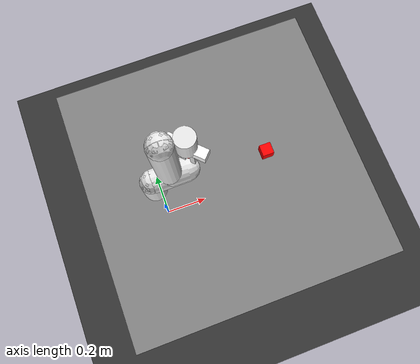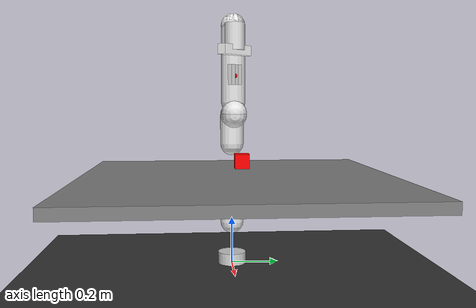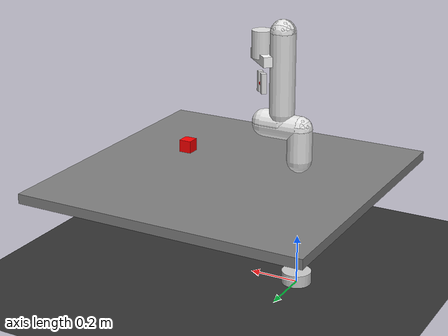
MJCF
<mujoco model="grasp_scene">
  <include file="franka/panda.xml"/>

  <statistic center="0 0 0.5" extent="1.5"/>

  <visual>
    <headlight diffuse="0.6 0.6 0.6" ambient="0.1 0.1 0.1" specular="0 0 0"/>
    <global azimuth="120" elevation="-20"/>
  </visual>

  <worldbody>
    <!-- Light -->
    <light pos="0 0 1.5" dir="0 0 -1" directional="true"/>

    <!-- Floor -->
    <geom name="floor" type="plane" size="2 2 0.1" rgba="0.2 0.2 0.2 1"/>

    <!-- Table -->
    <body name="table" pos="0.3 0 0.4">
      <geom type="box" size="0.6 0.6 0.02" rgba="0.5 0.5 0.5 1" friction="1 0.005 0.0001" solimp="0.99 0.99 0.001" solref="0.002 1"/>
    </body>

    <!-- Object -->
    <body name="box" pos="0.5 0 0.5">
      <freejoint/>
      <geom type="box" size="0.025 0.025 0.025" rgba="1 0 0 1" mass="0.1" friction="2 1 0.005" solimp="0.99 0.99 0.001" solref="0.002 1"/>
    </body>
  </worldbody>
</mujoco>

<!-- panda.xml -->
<mujoco model="franka_panda">
  <compiler angle="radian" meshdir="."/>

  <default>
    <joint damping="1" armature="0.1"/>
    <!-- Visual settings for the robot links -->
    <geom type="capsule" rgba="0.9 0.9 0.9 1" size="0.05"/>
    <site rgba="1 0 0 1" size="0.01"/>
  </default>

  <asset>
    <!-- We use procedural textures or colors instead of meshes for simplicity -->
  </asset>

  <worldbody>
    <!-- Robot Base -->
    <body name="link0" pos="0 0 0">
      <geom type="cylinder" fromto="0 0 0 0 0 0.05" size="0.06" rgba="0.8 0.8 0.8 1"/>

      <!-- Joint 1 -->
      <body name="link1" pos="0 0 0.333">
        <joint name="joint1" axis="0 0 1" range="-2.8973 2.8973"/>
        <geom fromto="0 0 0 0 0 -0.15"/>
        <geom fromto="0 0 0 0 0.1 0" size="0.05"/>

        <!-- Joint 2 -->
        <body name="link2" pos="0 0 0" quat="0.707107 -0.707107 0 0">
          <joint name="joint2" axis="0 0 1" range="-1.7628 1.7628"/>
          <geom fromto="0 0 0 0 0 0.15"/>

          <!-- Joint 3 -->
          <body name="link3" pos="0 -0.316 0" quat="0.707107 0.707107 0 0">
            <joint name="joint3" axis="0 0 1" range="-2.8973 2.8973"/>
            <geom fromto="0 0 0 0 0 -0.125"/>
            <geom fromto="0 0 0 0.15 0 0" size="0.05"/>

            <!-- Joint 4 -->
            <body name="link4" pos="0.15 0 0.01" quat="0.707107 0.707107 0 0">
              <joint name="joint4" axis="0 0 1" range="-3.0718 -0.0698"/>
              <geom fromto="0 0 0 -0.075 0 0"/>

              <!-- Joint 5 -->
              <body name="link5" pos="-0.0725 0.36 0" quat="0.707107 -0.707107 0 0">
                <joint name="joint5" axis="0 0 1" range="-2.8973 2.8973"/>
                <geom fromto="0 0 0 0 0 -0.3175"/>

                <!-- Joint 6 -->
                <body name="link6" pos="0 0 0" quat="0.707107 0.707107 0 0">
                  <joint name="joint6" axis="0 0 1" range="-0.0175 3.7525"/>
                  <geom fromto="0 0 0 0 0 0.001"/>

                  <!-- Joint 7 -->
                  <body name="link7" pos="0.088 0 0" quat="0.707107 0.707107 0 0">
                    <joint name="joint7" axis="0 0 1" range="-2.8973 2.8973"/>
                    <geom type="cylinder" fromto="0 0 0 0 0 0.107" size="0.04"/>

                    <!-- Hand -->
                    <body name="hand" pos="0 0 0.107" quat="0.92388 0 0 -0.382683">
                      <geom type="box" size="0.02 0.08 0.02" rgba="1 1 1 1"/>

                      <!-- Attachment Site for IK -->
                      <site name="attachment_site" pos="0 0 0.1034" />

                      <!-- Fingers -->
                      <body name="left_finger" pos="0 0 0.0584">
                          <joint name="finger_joint1" type="slide" axis="0 1 0" range="0 0.04"/>
                          <geom type="box" size="0.01 0.01 0.04" pos="0 0.02 0.04" friction="5 5 0.1" solimp="0.99 0.99 0.001" solref="0.002 1"/>
                        </body>
                        <body name="right_finger" pos="0 0 0.0584">
                          <joint name="finger_joint2" type="slide" axis="0 -1 0" range="0 0.04"/>
                          <geom type="box" size="0.01 0.01 0.04" pos="0 -0.02 0.04" friction="5 5 0.1" solimp="0.99 0.99 0.001" solref="0.002 1"/>
                        </body>
                    </body>
                  </body>
                </body>
              </body>
            </body>
          </body>
        </body>
      </body>
    </body>
  </worldbody>

  <actuator>
    <motor name="ctrl_joint1" joint="joint1" gear="100"/>
    <motor name="ctrl_joint2" joint="joint2" gear="100"/>
    <motor name="ctrl_joint3" joint="joint3" gear="100"/>
    <motor name="ctrl_joint4" joint="joint4" gear="100"/>
    <motor name="ctrl_joint5" joint="joint5" gear="100"/>
    <motor name="ctrl_joint6" joint="joint6" gear="100"/>
    <motor name="ctrl_joint7" joint="joint7" gear="100"/>
    <position name="ctrl_finger1" joint="finger_joint1" kp="100"/>
    <position name="ctrl_finger2" joint="finger_joint2" kp="100"/>
  </actuator>

  <sensor>
     <jointpos name="jp1" joint="joint1"/>
     <jointpos name="jp2" joint="joint2"/>
     <jointpos name="jp3" joint="joint3"/>
     <jointpos name="jp4" joint="joint4"/>
     <jointpos name="jp5" joint="joint5"/>
     <jointpos name="jp6" joint="joint6"/>
     <jointpos name="jp7" joint="joint7"/>
  </sensor>
</mujoco>
